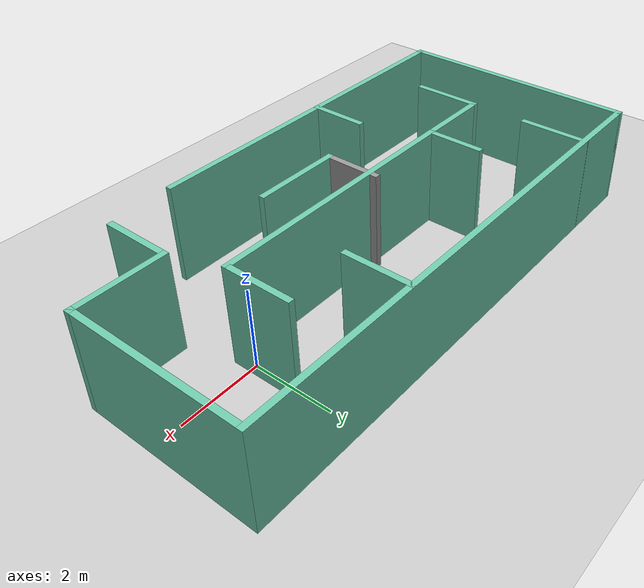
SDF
<sdf version="1.4">
  <world name="default">

    <scene>
      <ambient>0.4 0.4 0.4 1</ambient>
      <background>0.7 0.7 0.7 1</background>
      <shadows>true</shadows>
    </scene>

    <!-- A global light source -->
    <include>
      <uri>model://sun</uri>
    </include>

    <!-- A ground plane -->
    <include>
      <uri>model://ground_plane</uri>
    </include>
    <!-- Custom Maze 2 -->
    <include>
      <uri>model://Custom2</uri>
    </include>

    <physics type="ode">
      <real_time_update_rate>1000.0</real_time_update_rate>
      <max_step_size>0.001</max_step_size>
      <real_time_factor>1</real_time_factor>
      <ode>
        <solver>
          <type>quick</type>
          <iters>150</iters>
          <precon_iters>0</precon_iters>
          <sor>1.400000</sor>
          <use_dynamic_moi_rescaling>1</use_dynamic_moi_rescaling>
        </solver>
        <constraints>
          <cfm>0.00001</cfm>
          <erp>0.2</erp>
          <contact_max_correcting_vel>2000.000000</contact_max_correcting_vel>
          <contact_surface_layer>0.01000</contact_surface_layer>
        </constraints>
      </ode>
    </physics>
  </world>

</sdf>

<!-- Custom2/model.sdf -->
<sdf version='1.6'>
  <model name='Custom_Maze2'>
    <pose frame=''>-3.73613 -0.319085 0 0 -0 0</pose>
    <link name='Wall_0'>
      <collision name='Wall_0_Collision'>
        <geometry>
          <box>
            <size>6.25 0.15 2.5</size>
          </box>
        </geometry>
        <pose frame=''>0 0 1.25 0 -0 0</pose>
      </collision>
      <visual name='Wall_0_Visual'>
        <pose frame=''>0 0 1.25 0 -0 0</pose>
        <geometry>
          <box>
            <size>6.25 0.15 2.5</size>
          </box>
        </geometry>
        <material>
          <script>
            <uri>file://media/materials/scripts/gazebo.material</uri>
            <name>Gazebo/Grey</name>
          </script>
          <ambient>0.435294 0.796078 0.67451 1</ambient>
        </material>
      </visual>
      <pose frame=''>-6.425 0 0 0 0 -1.5708</pose>
    </link>
    <link name='Wall_11'>
      <collision name='Wall_11_Collision'>
        <geometry>
          <box>
            <size>1.75 0.15 2.5</size>
          </box>
        </geometry>
        <pose frame=''>0 0 1.25 0 -0 0</pose>
      </collision>
      <visual name='Wall_11_Visual'>
        <pose frame=''>0 0 1.25 0 -0 0</pose>
        <geometry>
          <box>
            <size>1.75 0.15 2.5</size>
          </box>
        </geometry>
        <material>
          <script>
            <uri>file://media/materials/scripts/gazebo.material</uri>
            <name>Gazebo/Grey</name>
          </script>
          <ambient>0.435294 0.796078 0.67451 1</ambient>
        </material>
      </visual>
      <pose frame=''>2.15273 2.25 0 0 0 -1.5708</pose>
    </link>
    <link name='Wall_13'>
      <collision name='Wall_13_Collision'>
        <geometry>
          <box>
            <size>1.75 0.15 2.5</size>
          </box>
        </geometry>
        <pose frame=''>0 0 1.25 0 -0 0</pose>
      </collision>
      <visual name='Wall_13_Visual'>
        <pose frame=''>0 0 1.25 0 -0 0</pose>
        <geometry>
          <box>
            <size>1.75 0.15 2.5</size>
          </box>
        </geometry>
        <material>
          <script>
            <uri>file://media/materials/scripts/gazebo.material</uri>
            <name>Gazebo/Grey</name>
          </script>
          <ambient>0.435294 0.796078 0.67451 1</ambient>
        </material>
      </visual>
      <pose frame=''>-4.59995 -0.852585 0 0 0 -1.5708</pose>
    </link>
    <link name='Wall_15'>
      <collision name='Wall_15_Collision'>
        <geometry>
          <box>
            <size>9.25 0.15 2.5</size>
          </box>
        </geometry>
        <pose frame=''>0 0 1.25 0 -0 0</pose>
      </collision>
      <visual name='Wall_15_Visual'>
        <pose frame=''>0 0 1.25 0 -0 0</pose>
        <geometry>
          <box>
            <size>9.25 0.15 2.5</size>
          </box>
        </geometry>
        <material>
          <script>
            <uri>file://media/materials/scripts/gazebo.material</uri>
            <name>Gazebo/Grey</name>
          </script>
          <ambient>0.435294 0.796078 0.67451 1</ambient>
        </material>
      </visual>
      <pose frame=''>-1.875 -3.05 0 0 -0 0</pose>
    </link>
    <link name='Wall_17'>
      <collision name='Wall_17_Collision'>
        <geometry>
          <box>
            <size>2 0.15 2.5</size>
          </box>
        </geometry>
        <pose frame=''>0 0 1.25 0 -0 0</pose>
      </collision>
      <visual name='Wall_17_Visual'>
        <pose frame=''>0 0 1.25 0 -0 0</pose>
        <geometry>
          <box>
            <size>2 0.15 2.5</size>
          </box>
        </geometry>
        <material>
          <script>
            <uri>file://media/materials/scripts/gazebo.material</uri>
            <name>Gazebo/Grey</name>
          </script>
          <ambient>0.435294 0.796078 0.67451 1</ambient>
        </material>
      </visual>
      <pose frame=''>-3.67495 -0.052585 0 0 -0 0</pose>
    </link>
    <link name='Wall_18'>
      <collision name='Wall_18_Collision'>
        <geometry>
          <box>
            <size>1.5 0.15 2.5</size>
          </box>
        </geometry>
        <pose frame=''>0 0 1.25 0 -0 0</pose>
      </collision>
      <visual name='Wall_18_Visual'>
        <pose frame=''>0 0 1.25 0 -0 0</pose>
        <geometry>
          <box>
            <size>1.5 0.15 2.5</size>
          </box>
        </geometry>
        <material>
          <script>
            <uri>file://media/materials/scripts/gazebo.material</uri>
            <name>Gazebo/Grey</name>
          </script>
          <ambient>0.435294 0.796078 0.67451 1</ambient>
        </material>
      </visual>
      <pose frame=''>-2.74995 0.622415 0 0 -0 1.5708</pose>
    </link>
    <link name='Wall_2'>
      <collision name='Wall_2_Collision'>
        <geometry>
          <box>
            <size>13 0.15 2.5</size>
          </box>
        </geometry>
        <pose frame=''>0 0 1.25 0 -0 0</pose>
      </collision>
      <visual name='Wall_2_Visual'>
        <pose frame=''>0 0 1.25 0 -0 0</pose>
        <geometry>
          <box>
            <size>13 0.15 2.5</size>
          </box>
        </geometry>
        <material>
          <script>
            <uri>file://media/materials/scripts/gazebo.material</uri>
            <name>Gazebo/Grey</name>
          </script>
          <ambient>0.435294 0.796078 0.67451 1</ambient>
        </material>
      </visual>
      <pose frame=''>0 3.05 0 0 -0 0</pose>
    </link>
    <link name='Wall_20'>
      <collision name='Wall_20_Collision'>
        <geometry>
          <box>
            <size>6.75 0.15 2.5</size>
          </box>
        </geometry>
        <pose frame=''>0 0 1.25 0 -0 0</pose>
      </collision>
      <visual name='Wall_20_Visual'>
        <pose frame=''>0 0 1.25 0 -0 0</pose>
        <geometry>
          <box>
            <size>6.75 0.15 2.5</size>
          </box>
        </geometry>
        <material>
          <script>
            <uri>file://media/materials/scripts/gazebo.material</uri>
            <name>Gazebo/Grey</name>
          </script>
          <ambient>0.435294 0.796078 0.67451 1</ambient>
        </material>
      </visual>
      <pose frame=''>0.55005 -0.052585 0 0 -0 0</pose>
    </link>
    <link name='Wall_21'>
      <collision name='Wall_21_Collision'>
        <geometry>
          <box>
            <size>1.75 0.15 2.5</size>
          </box>
        </geometry>
        <pose frame=''>0 0 1.25 0 -0 0</pose>
      </collision>
      <visual name='Wall_21_Visual'>
        <pose frame=''>0 0 1.25 0 -0 0</pose>
        <geometry>
          <box>
            <size>1.75 0.15 2.5</size>
          </box>
        </geometry>
        <material>
          <script>
            <uri>file://media/materials/scripts/gazebo.material</uri>
            <name>Gazebo/Grey</name>
          </script>
          <ambient>0.435294 0.796078 0.67451 1</ambient>
        </material>
      </visual>
      <pose frame=''>3.85005 0.747415 0 0 -0 1.5708</pose>
    </link>
    <link name='Wall_23'>
      <collision name='Wall_23_Collision'>
        <geometry>
          <box>
            <size>1.5 0.15 2.5</size>
          </box>
        </geometry>
        <pose frame=''>0 0 1.25 0 -0 0</pose>
      </collision>
      <visual name='Wall_23_Visual'>
        <pose frame=''>0 0 1.25 0 -0 0</pose>
        <geometry>
          <box>
            <size>1.5 0.15 2.5</size>
          </box>
        </geometry>
        <material>
          <script>
            <uri>file://media/materials/scripts/gazebo.material</uri>
            <name>Gazebo/Grey</name>
          </script>
          <ambient>0.435294 0.796078 0.67451 1</ambient>
        </material>
      </visual>
      <pose frame=''>-2.04488 -2.37013 0 0 0 -1.5708</pose>
    </link>
    <link name='Wall_25'>
      <collision name='Wall_25_Collision'>
        <geometry>
          <box>
            <size>1.5 0.15 2.5</size>
          </box>
        </geometry>
        <pose frame=''>0 0 1.25 0 -0 0</pose>
      </collision>
      <visual name='Wall_25_Visual'>
        <pose frame=''>0 0 1.25 0 -0 0</pose>
        <geometry>
          <box>
            <size>1.5 0.15 2.5</size>
          </box>
        </geometry>
        <material>
          <script>
            <uri>file://media/materials/scripts/gazebo.material</uri>
            <name>Gazebo/Grey</name>
          </script>
          <ambient>1 1 1 1</ambient>
        </material>
      </visual>
      <pose frame=''>-0.402335 -0.54508 0 0 0 -1.5708</pose>
    </link>
    <link name='Wall_26'>
      <collision name='Wall_26_Collision'>
        <geometry>
          <box>
            <size>2.25 0.15 2.5</size>
          </box>
        </geometry>
        <pose frame=''>0 0 1.25 0 -0 0</pose>
      </collision>
      <visual name='Wall_26_Visual'>
        <pose frame=''>0 0 1.25 0 -0 0</pose>
        <geometry>
          <box>
            <size>2.25 0.15 2.5</size>
          </box>
        </geometry>
        <material>
          <script>
            <uri>file://media/materials/scripts/gazebo.material</uri>
            <name>Gazebo/Grey</name>
          </script>
          <ambient>0.435294 0.796078 0.67451 1</ambient>
        </material>
      </visual>
      <pose frame=''>0.647665 -1.22008 0 0 -0 0</pose>
    </link>
    <link name='Wall_3'>
      <collision name='Wall_3_Collision'>
        <geometry>
          <box>
            <size>4.5 0.15 2.5</size>
          </box>
        </geometry>
        <pose frame=''>0 0 1.25 0 -0 0</pose>
      </collision>
      <visual name='Wall_3_Visual'>
        <pose frame=''>0 0 1.25 0 -0 0</pose>
        <geometry>
          <box>
            <size>4.5 0.15 2.5</size>
          </box>
        </geometry>
        <material>
          <script>
            <uri>file://media/materials/scripts/gazebo.material</uri>
            <name>Gazebo/Grey</name>
          </script>
          <ambient>0.435294 0.796078 0.67451 1</ambient>
        </material>
      </visual>
      <pose frame=''>6.425 0.875 0 0 0 -1.5708</pose>
    </link>
    <link name='Wall_4'>
      <collision name='Wall_4_Collision'>
        <geometry>
          <box>
            <size>2.25 0.15 2.5</size>
          </box>
        </geometry>
        <pose frame=''>0 0 1.25 0 -0 0</pose>
      </collision>
      <visual name='Wall_4_Visual'>
        <pose frame=''>0 0 1.25 0 -0 0</pose>
        <geometry>
          <box>
            <size>2.25 0.15 2.5</size>
          </box>
        </geometry>
        <material>
          <script>
            <uri>file://media/materials/scripts/gazebo.material</uri>
            <name>Gazebo/Grey</name>
          </script>
          <ambient>0.435294 0.796078 0.67451 1</ambient>
        </material>
      </visual>
      <pose frame=''>5.375 -1.3 0 0 -0 3.14159</pose>
    </link>
    <link name='Wall_5'>
      <collision name='Wall_5_Collision'>
        <geometry>
          <box>
            <size>1.75 0.15 2.5</size>
          </box>
        </geometry>
        <pose frame=''>0 0 1.25 0 -0 0</pose>
      </collision>
      <visual name='Wall_5_Visual'>
        <pose frame=''>0 0 1.25 0 -0 0</pose>
        <geometry>
          <box>
            <size>1.75 0.15 2.5</size>
          </box>
        </geometry>
        <material>
          <script>
            <uri>file://media/materials/scripts/gazebo.material</uri>
            <name>Gazebo/Grey</name>
          </script>
          <ambient>0.435294 0.796078 0.67451 1</ambient>
        </material>
      </visual>
      <pose frame=''>4.325 -2.1 0 0 0 -1.5708</pose>
    </link>
    <link name='Wall_9'>
      <collision name='Wall_9_Collision'>
        <geometry>
          <box>
            <size>1.75 0.15 2.5</size>
          </box>
        </geometry>
        <pose frame=''>0 0 1.25 0 -0 0</pose>
      </collision>
      <visual name='Wall_9_Visual'>
        <pose frame=''>0 0 1.25 0 -0 0</pose>
        <geometry>
          <box>
            <size>1.75 0.15 2.5</size>
          </box>
        </geometry>
        <material>
          <script>
            <uri>file://media/materials/scripts/gazebo.material</uri>
            <name>Gazebo/Grey</name>
          </script>
          <ambient>0.435294 0.796078 0.67451 1</ambient>
        </material>
      </visual>
      <pose frame=''>-4.59995 2.25 0 0 0 -1.5708</pose>
    </link>
    <static>1</static>
  </model>
</sdf>
